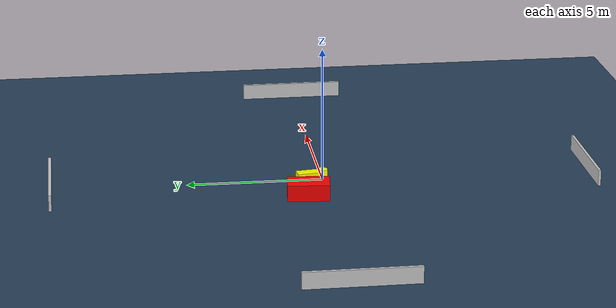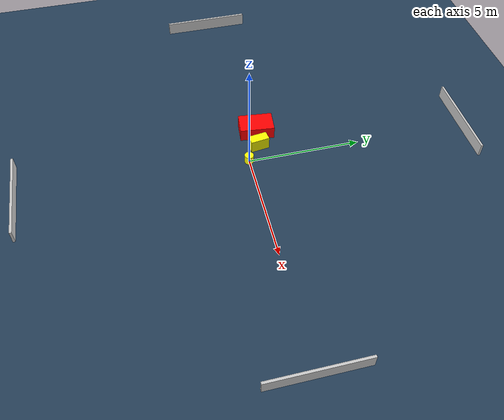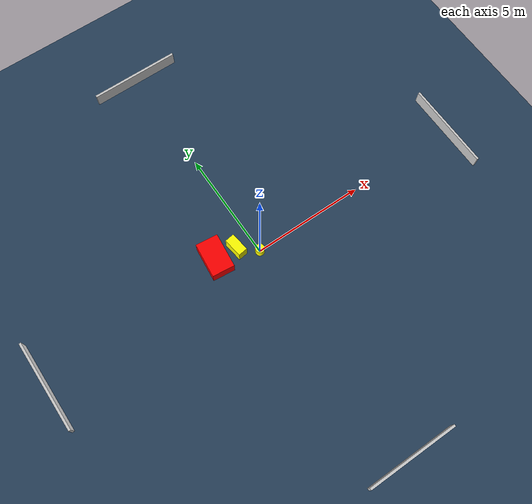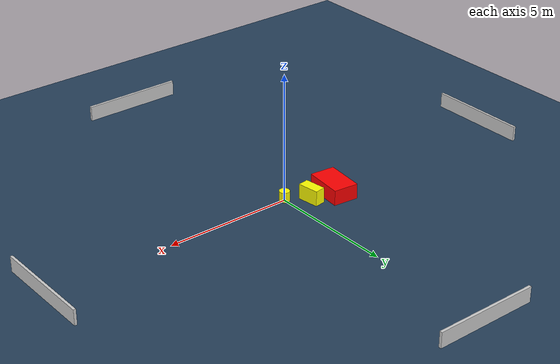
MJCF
<?xml version="1.0" ?>
<mujoco model="generated_environment">
  <option timestep="0.01" integrator="RK4" cone="elliptic"/>
  <default>
    <geom density="1"/>
  </default>
  <asset>
    <texture builtin="gradient" height="3072" name="skybox" rgb1="0.3 0.5 0.7" rgb2="0 0 0" type="skybox" width="512"/>
    <texture builtin="checker" height="300" name="groundplane" rgb1="0.2 0.3 0.4" rgb2="0.1 0.2 0.3" type="2d" width="300"/>
    <material name="groundplane" reflectance="0.2" texrepeat="5 5" texture="groundplane"/>
  </asset>
  <worldbody>
    <light dir="0 0 -1" directional="true" pos="0 0 1.5"/>
    <geom condim="3" friction="0.5 0.005 0.001" material="groundplane" name="floor" pos="0 0 0" size="0 0 0.05" type="plane"/>
    <body name="walls">
      <geom name="wall_1" condim="4" pos="-10.0 0.0 0.3" rgba="0.800000011920929 0.800000011920929 0.800000011920929 1.0" size="0.05 2.0 0.3" type="box"/>
      <geom name="wall_2" condim="4" pos="10.0 0.0 0.3" rgba="0.800000011920929 0.800000011920929 0.800000011920929 1.0" size="0.05 2.0 0.3" type="box"/>
      <geom name="wall_3" condim="4" pos="0.0 -10.0 0.3" rgba="0.800000011920929 0.800000011920929 0.800000011920929 1.0" size="2.0 0.05 0.3" type="box"/>
      <geom name="wall_4" condim="4" pos="0.0 10.0 0.3" rgba="0.800000011920929 0.800000011920929 0.800000011920929 1.0" size="2.0 0.05 0.3" type="box"/>
    </body>
    <body name="robot">
      <joint name="joint_x" type="slide" pos="0 0 0" axis="1 0 0"/>
      <joint name="joint_y" type="slide" pos="0 0 0" axis="0 1 0"/>
      <geom name="robot" type="cylinder" pos="0.0 0.0 0.2" size="0.2 0.2 0.0" mass="5.0" friction="1.0 0.005 0.0001" condim="4" rgba="1.0 1.0 0.0 1.0"/>
    </body>
    <body name="obstacle_1_movable">
      <geom name="obstacle_1_movable" condim="4" pos="-0.761113667350753 0.6198665593003765 0.3" euler="0 0 277.9317184167624" friction="0.0 0.005 0.001" rgba="1.0 1.0 0.0 1.0" size="0.419618897165111 0.20986338548061723 0.3" type="box" mass="0.1"/>
      <joint type="free"/>
    </body>
    <body name="obstacle_2_static">
      <geom name="obstacle_2_static" condim="4" pos="-1.7305218342667494 0.7318184525547328 0.3" euler="0 0 264.1137217496192" friction="0.0 0.005 0.001" rgba="1.0 0.0 0.0 1.0" size="0.767162802908093 0.49292410891454563 0.3" type="box"/>
    </body>
  </worldbody>
  <actuator>
    <motor name="actuator_x" joint="joint_x" gear="1" ctrlrange="-1 1"/>
    <motor name="actuator_y" joint="joint_y" gear="1" ctrlrange="-1 1"/>
  </actuator>
</mujoco>
